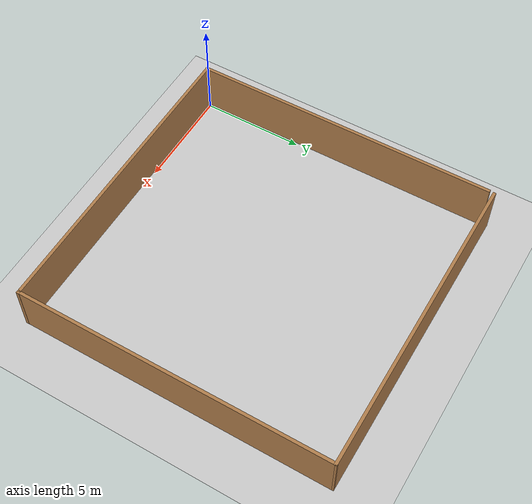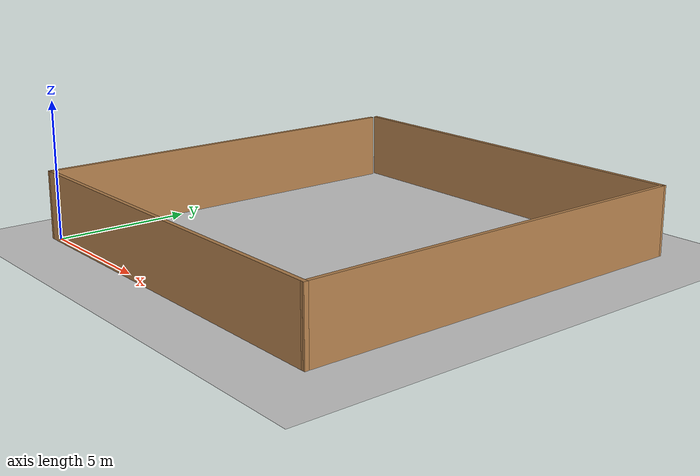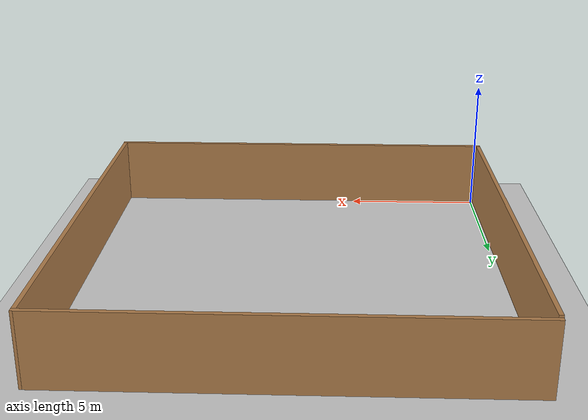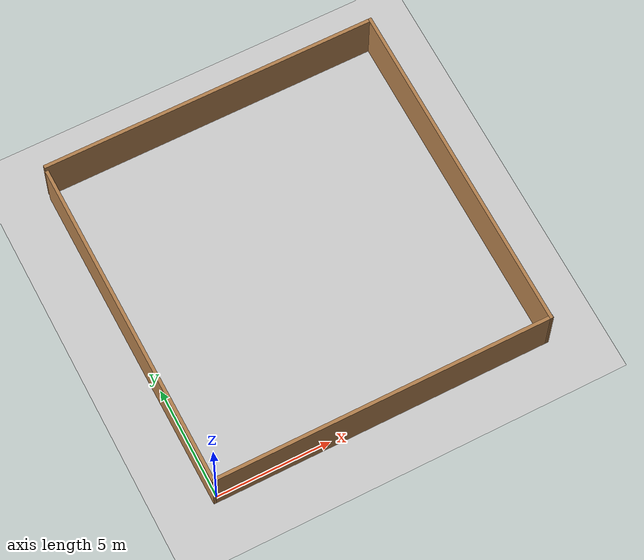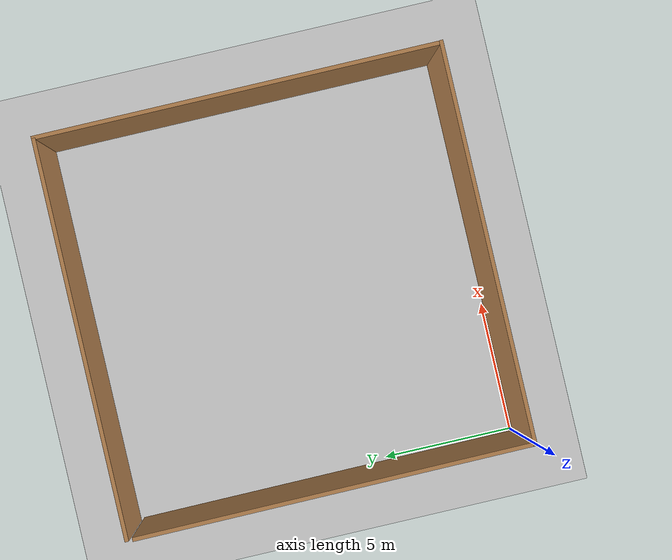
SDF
<sdf version="1.7">
 <world name="default">
  <light name="sun" type="directional">
   <pose>0 0 10 0 -0 0</pose>
   <diffuse>0.8 0.8 0.8 1</diffuse>
   <specular>0.2 0.2 0.2 1</specular>
   <attenuation>
    <range>1000</range>
    <constant>0.9</constant>
    <linear>0.01</linear>
    <quadratic>0.001</quadratic>
   </attenuation>
   <direction>-0.5 0.1 -0.9</direction>
   <spot><inner_angle>0</inner_angle><outer_angle>0</outer_angle><falloff>0</falloff></spot>
  </light>
  <model name="ground_plane">
   <pose>1212 0 0 0 -0 0</pose>
   <static>1</static>
   <link name="link">
    <collision name="collision">
     <geometry><plane><normal>0 0 1</normal><size>100 100</size></plane></geometry>
     <surface>
      <contact><collide_bitmask>65535</collide_bitmask></contact>
      <friction><ode><mu>100</mu><mu2>50</mu2></ode></friction>
     </surface>
    </collision>
    <visual name="visual">
     <cast_shadows>0</cast_shadows>
     <geometry><plane><normal>0 0 1</normal><size>100 100</size></plane></geometry>
     <material>
      <script><uri>file://media/materials/scripts/gazebo.material</uri><name>Gazebo/Grey</name></script>
     </material>
    </visual>
   </link>
  </model>
  <gravity>0 0 -9.8</gravity>
  <magnetic_field>6e-06 2.3e-05 -4.2e-05</magnetic_field>
  <atmosphere type="adiabatic"/>
  <physics type="ode">
   <max_step_size>0.001</max_step_size>
   <real_time_factor>1</real_time_factor>
   <real_time_update_rate>1000</real_time_update_rate>
  </physics>
  <scene><ambient>0.4 0.4 0.4 1</ambient><background>0.7 0.7 0.7 1</background><shadows>1</shadows></scene>
  <spherical_coordinates>
   <surface_model>EARTH_WGS84</surface_model>
   <latitude_deg>0</latitude_deg>
   <longitude_deg>0</longitude_deg>
   <elevation>0</elevation>
   <heading_deg>0</heading_deg>
  </spherical_coordinates>
  <model name="15x15">
   <pose>7.23686 7.41128 0 0 -0 0</pose>
   <link name="Wall_18">
    <collision name="Wall_18_Collision">
     <geometry><box><size>15 0.15 2.5</size></box></geometry>
     <pose>0 0 1.25 0 -0 0</pose>
    </collision>
    <visual name="Wall_18_Visual">
     <pose>0 0 1.25 0 -0 0</pose>
     <geometry><box><size>15 0.15 2.5</size></box></geometry>
     <material>
      <script><uri>file://media/materials/scripts/gazebo.material</uri><name>Gazebo/Wood</name></script>
      <ambient>1 1 1 1</ambient>
     </material>
     <meta><layer>0</layer></meta>
    </visual>
    <pose>0.036371 -7.55427 0 0 -0 3.14159</pose>
   </link>
   <link name="Wall_20">
    <collision name="Wall_20_Collision">
     <geometry><box><size>14.9714 0.15 2.5</size></box></geometry>
     <pose>0 0 1.25 0 -0 0</pose>
    </collision>
    <visual name="Wall_20_Visual">
     <pose>0 0 1.25 0 -0 0</pose>
     <geometry><box><size>14.9714 0.15 2.5</size></box></geometry>
     <material>
      <script><uri>file://media/materials/scripts/gazebo.material</uri><name>Gazebo/Wood</name></script>
      <ambient>1 1 1 1</ambient>
     </material>
     <meta><layer>0</layer></meta>
    </visual>
    <pose>-7.42916 -0.143755 0 0 -0 1.5751</pose>
   </link>
   <link name="Wall_22">
    <collision name="Wall_22_Collision">
     <geometry><box><size>15 0.15 2.5</size></box></geometry>
     <pose>0 0 1.25 0 -0 0</pose>
    </collision>
    <visual name="Wall_22_Visual">
     <pose>0 0 1.25 0 -0 0</pose>
     <geometry><box><size>15 0.15 2.5</size></box></geometry>
     <material>
      <script><uri>file://media/materials/scripts/gazebo.material</uri><name>Gazebo/Wood</name></script>
      <ambient>1 1 1 1</ambient>
     </material>
     <meta><layer>0</layer></meta>
    </visual>
    <pose>0.010902 7.55457 0 0 -0 0</pose>
   </link>
   <link name="Wall_23">
    <collision name="Wall_23_Collision">
     <geometry><box><size>15.2589 0.15 2.5</size></box></geometry>
     <pose>0 0 1.25 0 -0 0</pose>
    </collision>
    <visual name="Wall_23_Visual">
     <pose>0 0 1.25 0 -0 0</pose>
     <geometry><box><size>15.2589 0.15 2.5</size></box></geometry>
     <material>
      <script><uri>file://media/materials/scripts/gazebo.material</uri><name>Gazebo/Wood</name></script>
      <ambient>1 1 1 1</ambient>
     </material>
     <meta><layer>0</layer></meta>
    </visual>
    <pose>7.44431 0.000147 0 0 -0 -1.56968</pose>
   </link>
   <static>1</static>
  </model>
 </world>
</sdf>
